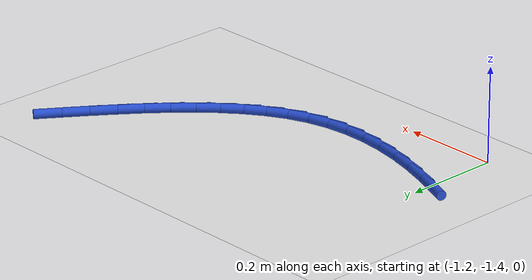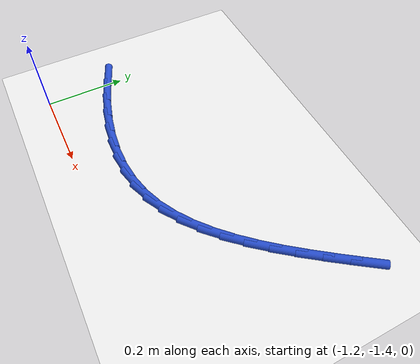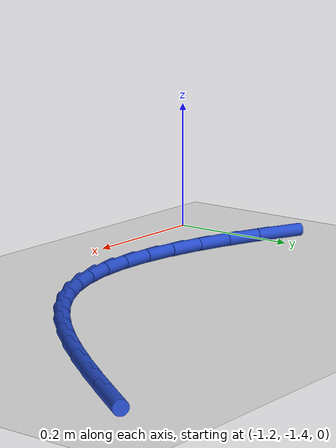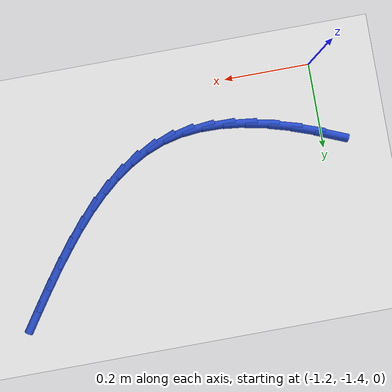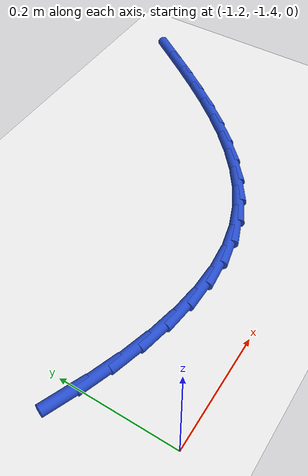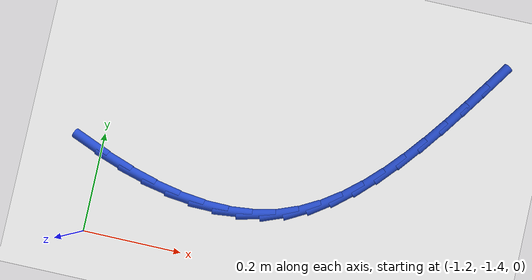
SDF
<sdf version="1.6">
 <world name="default">
  <model name="ground_plane">
   <static>1</static>
   <link name="link">
    <collision name="collision">
     <geometry><plane><normal>0 0 1</normal><size>100 100</size></plane></geometry>
     <surface><friction><ode><mu>100</mu><mu2>50</mu2></ode></friction></surface>
    </collision>
    <visual name="visual">
     <cast_shadows>0</cast_shadows>
     <geometry><plane><normal>0 0 1</normal><size>100 100</size></plane></geometry>
     <material>
      <script><uri>file://media/materials/scripts/gazebo.material</uri><name>Gazebo/WhiteGlow</name></script>
     </material>
    </visual>
   </link>
  </model>
  <model name="line">
   <link name="link_112">
    <pose>-1.220868939889997 -1.2261708451918882 0.01 0 1.57 -0.39129410480336435</pose>
    <collision name="collision">
     <geometry><cylinder><radius>0.01</radius><length>0.08</length></cylinder></geometry>
    </collision>
    <visual name="visual">
     <material>
      <script><name>Gazebo/Blue</name><uri>file://media/materials/scripts/gazebo.material</uri></script>
     </material>
     <geometry><cylinder><radius>0.01</radius><length>0.08</length></cylinder></geometry>
    </visual>
   </link>
   <link name="link_113">
    <pose>-1.168855852956842 -1.2476298057117243 0.01 0 1.57 -0.3359323795070126</pose>
    <collision name="collision">
     <geometry><cylinder><radius>0.01</radius><length>0.08</length></cylinder></geometry>
    </collision>
    <visual name="visual">
     <material>
      <script><name>Gazebo/Blue</name><uri>file://media/materials/scripts/gazebo.material</uri></script>
     </material>
     <geometry><cylinder><radius>0.01</radius><length>0.08</length></cylinder></geometry>
    </visual>
   </link>
   <link name="link_114">
    <pose>-1.1169016328280794 -1.2657704959337415 0.01 0 1.57 -0.2721406004940904</pose>
    <collision name="collision">
     <geometry><cylinder><radius>0.01</radius><length>0.08</length></cylinder></geometry>
    </collision>
    <visual name="visual">
     <material>
      <script><name>Gazebo/Blue</name><uri>file://media/materials/scripts/gazebo.material</uri></script>
     </material>
     <geometry><cylinder><radius>0.01</radius><length>0.08</length></cylinder></geometry>
    </visual>
   </link>
   <link name="link_115">
    <pose>-1.0653200969758398 -1.2801650490295553 0.01 0 1.57 -0.19818027809229896</pose>
    <collision name="collision">
     <geometry><cylinder><radius>0.01</radius><length>0.08</length></cylinder></geometry>
    </collision>
    <visual name="visual">
     <material>
      <script><name>Gazebo/Blue</name><uri>file://media/materials/scripts/gazebo.material</uri></script>
     </material>
     <geometry><cylinder><radius>0.01</radius><length>0.08</length></cylinder></geometry>
    </visual>
   </link>
   <link name="link_116">
    <pose>-1.014425062872255 -1.2903855981707806 0.01 0 1.57 -0.11213826941049357</pose>
    <collision name="collision">
     <geometry><cylinder><radius>0.01</radius><length>0.08</length></cylinder></geometry>
    </collision>
    <visual name="visual">
     <material>
      <script><name>Gazebo/Blue</name><uri>file://media/materials/scripts/gazebo.material</uri></script>
     </material>
     <geometry><cylinder><radius>0.01</radius><length>0.08</length></cylinder></geometry>
    </visual>
   </link>
   <link name="link_117">
    <pose>-0.9645303479894584 -1.2960042765290325 0.01 0 1.57 -0.012122373176565693</pose>
    <collision name="collision">
     <geometry><cylinder><radius>0.01</radius><length>0.08</length></cylinder></geometry>
    </collision>
    <visual name="visual">
     <material>
      <script><name>Gazebo/Blue</name><uri>file://media/materials/scripts/gazebo.material</uri></script>
     </material>
     <geometry><cylinder><radius>0.01</radius><length>0.08</length></cylinder></geometry>
    </visual>
   </link>
   <link name="link_118">
    <pose>-0.9159497697995796 -1.2965932172759262 0.01 0 1.57 0.10332384601635607</pose>
    <collision name="collision">
     <geometry><cylinder><radius>0.01</radius><length>0.08</length></cylinder></geometry>
    </collision>
    <visual name="visual">
     <material>
      <script><name>Gazebo/Blue</name><uri>file://media/materials/scripts/gazebo.material</uri></script>
     </material>
     <geometry><cylinder><radius>0.01</radius><length>0.08</length></cylinder></geometry>
    </visual>
   </link>
   <link name="link_119">
    <pose>-0.8689971457747522 -1.2917245535830766 0.01 0 1.57 0.23452084588991967</pose>
    <collision name="collision">
     <geometry><cylinder><radius>0.01</radius><length>0.08</length></cylinder></geometry>
    </collision>
    <visual name="visual">
     <material>
      <script><name>Gazebo/Blue</name><uri>file://media/materials/scripts/gazebo.material</uri></script>
     </material>
     <geometry><cylinder><radius>0.01</radius><length>0.08</length></cylinder></geometry>
    </visual>
   </link>
   <link name="link_120">
    <pose>-0.8239861691867464 -1.2809706597528319 0.01 0 1.57 0.3742038453920018</pose>
    <collision name="collision">
     <geometry><cylinder><radius>0.01</radius><length>0.08</length></cylinder></geometry>
    </collision>
    <visual name="visual">
     <material>
      <script><name>Gazebo/Blue</name><uri>file://media/materials/scripts/gazebo.material</uri></script>
     </material>
     <geometry><cylinder><radius>0.01</radius><length>0.08</length></cylinder></geometry>
    </visual>
   </link>
   <link name="link_121">
    <pose>-0.7811121628452183 -1.2641337222740756 0.01 0 1.57 0.5023926541550996</pose>
    <collision name="collision">
     <geometry><cylinder><radius>0.01</radius><length>0.08</length></cylinder></geometry>
    </collision>
    <visual name="visual">
     <material>
      <script><name>Gazebo/Blue</name><uri>file://media/materials/scripts/gazebo.material</uri></script>
     </material>
     <geometry><cylinder><radius>0.01</radius><length>0.08</length></cylinder></geometry>
    </visual>
   </link>
   <link name="link_122">
    <pose>-0.7402317585320182 -1.2416734846331778 0.01 0 1.57 0.6131886389215405</pose>
    <collision name="collision">
     <geometry><cylinder><radius>0.01</radius><length>0.08</length></cylinder></geometry>
    </collision>
    <visual name="visual">
     <material>
      <script><name>Gazebo/Blue</name><uri>file://media/materials/scripts/gazebo.material</uri></script>
     </material>
     <geometry><cylinder><radius>0.01</radius><length>0.08</length></cylinder></geometry>
    </visual>
   </link>
   <link name="link_123">
    <pose>-0.7011413981891684 -1.2141665468231888 0.01 0 1.57 0.7060206256618373</pose>
    <collision name="collision">
     <geometry><cylinder><radius>0.01</radius><length>0.08</length></cylinder></geometry>
    </collision>
    <visual name="visual">
     <material>
      <script><name>Gazebo/Blue</name><uri>file://media/materials/scripts/gazebo.material</uri></script>
     </material>
     <geometry><cylinder><radius>0.01</radius><length>0.08</length></cylinder></geometry>
    </visual>
   </link>
   <link name="link_124">
    <pose>-0.663637523758694 -1.1821895088371615 0.01 0 1.57 0.7819198715120804</pose>
    <collision name="collision">
     <geometry><cylinder><radius>0.01</radius><length>0.08</length></cylinder></geometry>
    </collision>
    <visual name="visual">
     <material>
      <script><name>Gazebo/Blue</name><uri>file://media/materials/scripts/gazebo.material</uri></script>
     </material>
     <geometry><cylinder><radius>0.01</radius><length>0.08</length></cylinder></geometry>
    </visual>
   </link>
   <link name="link_125">
    <pose>-0.6275165771826201 -1.1463189706681494 0.01 0 1.57 0.8426123011740023</pose>
    <collision name="collision">
     <geometry><cylinder><radius>0.01</radius><length>0.08</length></cylinder></geometry>
    </collision>
    <visual name="visual">
     <material>
      <script><name>Gazebo/Blue</name><uri>file://media/materials/scripts/gazebo.material</uri></script>
     </material>
     <geometry><cylinder><radius>0.01</radius><length>0.08</length></cylinder></geometry>
    </visual>
   </link>
   <link name="link_126">
    <pose>-0.5925750004029693 -1.107131532309203 0.01 0 1.57 0.8899256198481532</pose>
    <collision name="collision">
     <geometry><cylinder><radius>0.01</radius><length>0.08</length></cylinder></geometry>
    </collision>
    <visual name="visual">
     <material>
      <script><name>Gazebo/Blue</name><uri>file://media/materials/scripts/gazebo.material</uri></script>
     </material>
     <geometry><cylinder><radius>0.01</radius><length>0.08</length></cylinder></geometry>
    </visual>
   </link>
   <link name="link_127">
    <pose>-0.5586092353617673 -1.065203793753376 0.01 0 1.57 0.9254842546462393</pose>
    <collision name="collision">
     <geometry><cylinder><radius>0.01</radius><length>0.08</length></cylinder></geometry>
    </collision>
    <visual name="visual">
     <material>
      <script><name>Gazebo/Blue</name><uri>file://media/materials/scripts/gazebo.material</uri></script>
     </material>
     <geometry><cylinder><radius>0.01</radius><length>0.08</length></cylinder></geometry>
    </visual>
   </link>
   <link name="link_128">
    <pose>-0.5254157240010369 -1.021112354993719 0.01 0 1.57 0.9505861568455776</pose>
    <collision name="collision">
     <geometry><cylinder><radius>0.01</radius><length>0.08</length></cylinder></geometry>
    </collision>
    <visual name="visual">
     <material>
      <script><name>Gazebo/Blue</name><uri>file://media/materials/scripts/gazebo.material</uri></script>
     </material>
     <geometry><cylinder><radius>0.01</radius><length>0.08</length></cylinder></geometry>
    </visual>
   </link>
   <link name="link_129">
    <pose>-0.49279090826280325 -0.9754338160232856 0.01 0 1.57 0.966171691227835</pose>
    <collision name="collision">
     <geometry><cylinder><radius>0.01</radius><length>0.08</length></cylinder></geometry>
    </collision>
    <visual name="visual">
     <material>
      <script><name>Gazebo/Blue</name><uri>file://media/materials/scripts/gazebo.material</uri></script>
     </material>
     <geometry><cylinder><radius>0.01</radius><length>0.08</length></cylinder></geometry>
    </visual>
   </link>
   <link name="link_130">
    <pose>-0.4605312300890908 -0.9287447768351278 0.01 0 1.57 0.9728292389051968</pose>
    <collision name="collision">
     <geometry><cylinder><radius>0.01</radius><length>0.08</length></cylinder></geometry>
    </collision>
    <visual name="visual">
     <material>
      <script><name>Gazebo/Blue</name><uri>file://media/materials/scripts/gazebo.material</uri></script>
     </material>
     <geometry><cylinder><radius>0.01</radius><length>0.08</length></cylinder></geometry>
    </visual>
   </link>
  </model>
 </world>
</sdf>
